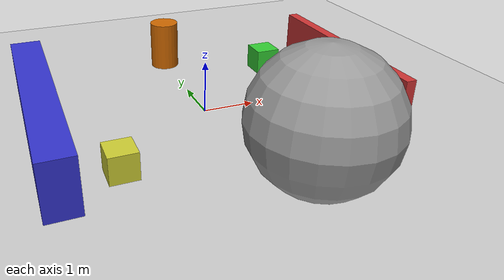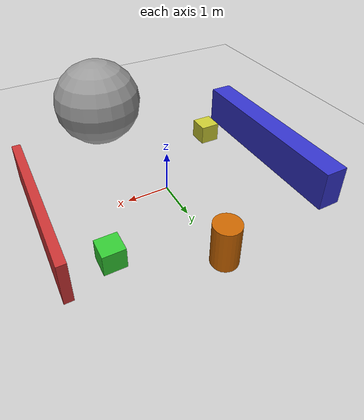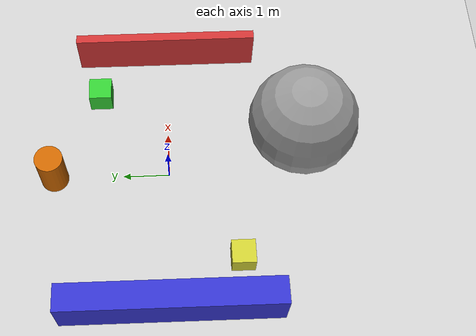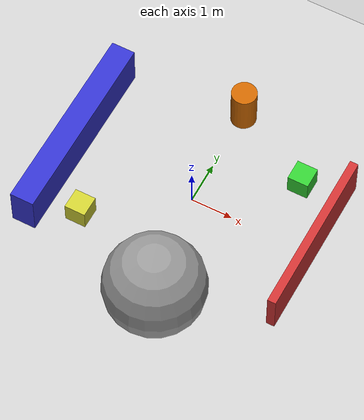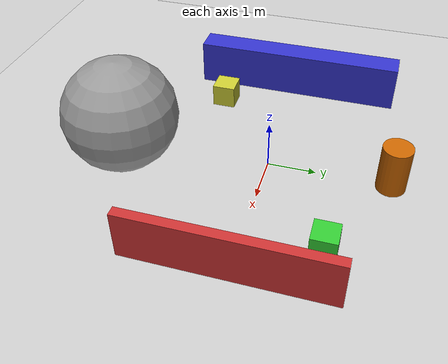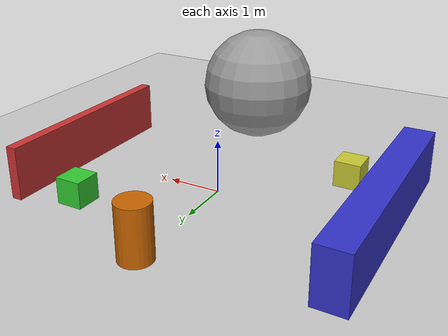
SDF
<sdf version="1.7">
 <world name="perception_world">
  <model name="ground_plane">
   <static>1</static>
   <link name="link">
    <collision name="collision">
     <geometry><plane><normal>0 0 1</normal><size>100 100</size></plane></geometry>
     <surface><friction><ode><mu>100</mu><mu2>50</mu2></ode></friction></surface>
    </collision>
    <visual name="visual">
     <cast_shadows>0</cast_shadows>
     <geometry><plane><normal>0 0 1</normal><size>100 100</size></plane></geometry>
     <material>
      <script><uri>file://media/materials/scripts/gazebo.material</uri><name>Gazebo/Grey</name></script>
     </material>
    </visual>
   </link>
  </model>
  <light name="sun" type="directional">
   <pose>0 0 10 0 -0 0</pose>
   <diffuse>0.8 0.8 0.8 1</diffuse>
   <specular>0.2 0.2 0.2 1</specular>
   <attenuation>
    <range>1000</range>
    <constant>0.9</constant>
    <linear>0.01</linear>
    <quadratic>0.001</quadratic>
   </attenuation>
   <direction>-0.5 0.1 -0.9</direction>
   <spot><inner_angle>0</inner_angle><outer_angle>0</outer_angle><falloff>0</falloff></spot>
  </light>
  <model name="wall_1">
   <static>1</static>
   <pose>3 0 0.5 0 -0 0</pose>
   <link name="link">
    <collision name="collision"><geometry><box><size>0.2 4 1</size></box></geometry></collision>
    <visual name="visual">
     <geometry><box><size>0.2 4 1</size></box></geometry>
     <material><ambient>0.8 0.2 0.2 1</ambient></material>
    </visual>
   </link>
  </model>
  <model name="wall_2">
   <static>1</static>
   <pose>-3 0 0.5 0 -0 0</pose>
   <link name="link">
    <collision name="collision"><geometry><box><size>0.571104 4.60516 1</size></box></geometry></collision>
    <visual name="visual">
     <geometry><box><size>0.571104 4.60516 1</size></box></geometry>
     <material><ambient>0.2 0.2 0.8 1</ambient></material>
    </visual>
   </link>
  </model>
  <model name="box_1">
   <static>1</static>
   <pose>2 1.5 0.25 0 -0 0</pose>
   <link name="link">
    <collision name="collision"><geometry><box><size>0.5 0.5 0.5</size></box></geometry></collision>
    <visual name="visual">
     <geometry><box><size>0.5 0.5 0.5</size></box></geometry>
     <material><ambient>0.2 0.8 0.2 1</ambient></material>
    </visual>
   </link>
  </model>
  <model name="box_2">
   <static>1</static>
   <pose>-2 -1.5 0.25 0 -0 0</pose>
   <link name="link">
    <collision name="collision"><geometry><box><size>0.5 0.5 0.5</size></box></geometry></collision>
    <visual name="visual">
     <geometry><box><size>0.5 0.5 0.5</size></box></geometry>
     <material><ambient>0.8 0.8 0.2 1</ambient></material>
    </visual>
   </link>
  </model>
  <model name="cylinder_1">
   <static>1</static>
   <pose>0 2.5 0.5 0 -0 0</pose>
   <link name="link">
    <collision name="collision">
     <geometry><cylinder><radius>0.3</radius><length>1</length></cylinder></geometry>
    </collision>
    <visual name="visual">
     <geometry><cylinder><radius>0.3</radius><length>1</length></cylinder></geometry>
     <material><ambient>0.8 0.4 0 1</ambient></material>
    </visual>
   </link>
  </model>
  <gravity>0 0 -9.8</gravity>
  <magnetic_field>6e-06 2.3e-05 -4.2e-05</magnetic_field>
  <atmosphere type="adiabatic"/>
  <physics type="ode">
   <max_step_size>0.001</max_step_size>
   <real_time_factor>1</real_time_factor>
   <real_time_update_rate>1000</real_time_update_rate>
  </physics>
  <scene><ambient>0.4 0.4 0.4 1</ambient><background>0.7 0.7 0.7 1</background><shadows>1</shadows></scene>
  <audio><device>default</device></audio>
  <spherical_coordinates>
   <surface_model>EARTH_WGS84</surface_model>
   <latitude_deg>0</latitude_deg>
   <longitude_deg>0</longitude_deg>
   <elevation>0</elevation>
   <heading_deg>0</heading_deg>
  </spherical_coordinates>
  <model name="unit_sphere">
   <pose>0.644691 -2.88706 1.1635 0 -0 0</pose>
   <link name="link">
    <inertial>
     <mass>1</mass>
     <inertia><ixx>0.1</ixx><ixy>0</ixy><ixz>0</ixz><iyy>0.1</iyy><iyz>0</iyz><izz>0.1</izz></inertia>
    </inertial>
    <collision name="collision"><geometry><sphere><radius>1.1635</radius></sphere></geometry></collision>
    <visual name="visual">
     <geometry><sphere><radius>1.1635</radius></sphere></geometry>
     <material>
      <script><name>Gazebo/Grey</name><uri>file://media/materials/scripts/gazebo.material</uri></script>
     </material>
    </visual>
   </link>
  </model>
 </world>
</sdf>
